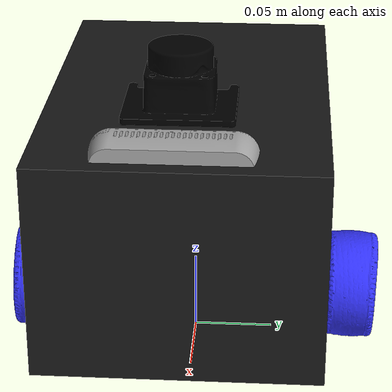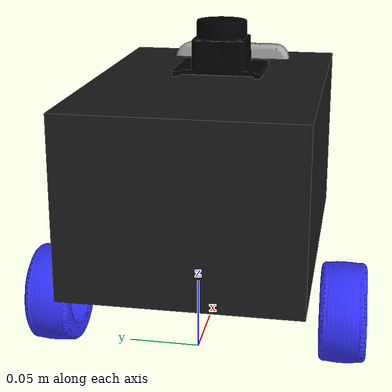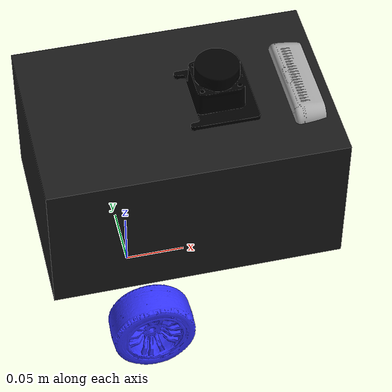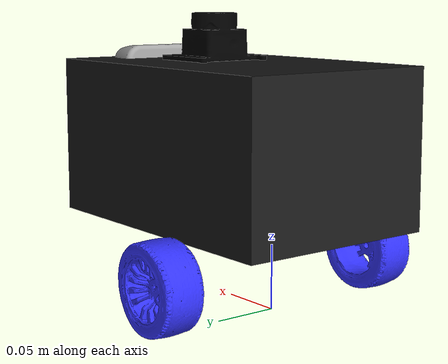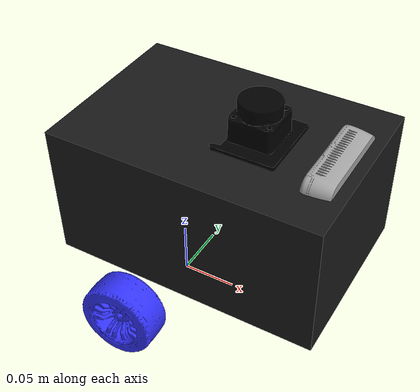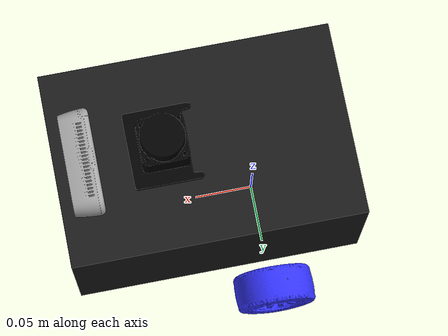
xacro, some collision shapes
<?xml version="1.0"?>

<robot xmlns:xacro="http://www.ros.org/wiki/xacro"  name="burger">
    <xacro:arg name="use_sim_camera" default="false"/>
    <xacro:arg name="sim_mode" default="false"/>
    <xacro:include filename="robot_core.xacro" />
    <xacro:include filename="lidar.xacro" />
    <xacro:include filename="depth_camera.xacro" />
    <xacro:if value="$(arg use_sim_camera)">
    </xacro:if>
</robot>

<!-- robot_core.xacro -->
<robot xmlns:xacro="http://www.ros.org/wiki/xacro">

  <xacro:include filename="inertial_macros.xacro"/>

  <!-- ================= PROPERTIES ================= -->

  <xacro:property name="chassis_length" value="0.24"/>
  <xacro:property name="chassis_width"  value="0.16"/>
  <xacro:property name="chassis_height" value="0.123"/>
  <xacro:property name="chassis_mass"   value="2.5"/>

  <xacro:property name="wheel_radius"     value="0.0346"/>
  <xacro:property name="wheel_thickness"  value="0.026"/>
  <xacro:property name="wheel_mass"       value="0.15"/>
  <xacro:property name="wheel_offset_x"   value="0.0"/>
  <xacro:property name="wheel_offset_y"   value="0.1"/>
  <xacro:property name="wheel_offset_z"   value="0.005"/>

  <xacro:property name="caster_wheel_radius" value="0.01"/>
  <xacro:property name="caster_wheel_mass"   value="0.1"/>
  <xacro:property name="caster_wheel_offset_x" value="0.075"/>
  <xacro:property name="caster_wheel_offset_z"
                  value="${wheel_offset_z - wheel_radius + caster_wheel_radius -0.024}"/>

  <!-- ================= MATERIALS ================= -->

  <material name="white">
    <color rgba="1 1 1 0.95"/>
  </material>

  <material name="orange">
    <color rgba="1 0.3 0.1 1"/>
  </material>

  <material name="blue">
    <color rgba="0.2 0.2 1 1"/>
  </material>

  <material name="black">
    <color rgba="0 0 0 0.99"/>
  </material>
 <material name="light_black">
    <color rgba="0.1 0.1 0.1 1"/>
  </material>

  <material name="red">
    <color rgba="1 0 0 0.9"/>
  </material>

  <material name="green">
    <color rgba="0 0.8 0 1"/>
  </material>

  <material name="grey">
    <color rgba="0.647 0.647 0.647 1"/>
  </material>

  <!-- ================= BASE LINK ================= -->

  <link name="base_link"/>

  <!-- ================= BASE FOOTPRINT ================= -->

  <joint name="base_footprint_joint" type="fixed">
    <parent link="base_link"/>
    <child link="base_footprint"/>
    <origin xyz="0 0 0" rpy="0 0 0"/>
  </joint>

  <link name="base_footprint"/>

  <!-- ================= CHASSIS ================= -->

  <joint name="chassis_joint" type="fixed">
    <parent link="base_link"/>
    <child link="chassis"/>
    <origin xyz="0.045 0 ${wheel_radius+0.02}"/>
  </joint>

  <link name="chassis">

    <visual>
      <origin xyz="0 0.0035 0" rpy="1.5708 0 1.5708"/>
      <geometry>
        <mesh filename="package://robot_descriptor/meshes/chassis_main.stl"
              scale="0.001 0.001 0.001"/>
      </geometry>
      <material name="light_black"/>
    </visual>

    <collision>
      <origin xyz="0 0 ${2*wheel_radius}"/>
      <geometry>
        <box size="${chassis_length} ${chassis_width} ${chassis_height}"/>
      </geometry>
    </collision>

    <xacro:inertial_box mass="2.5"
                        x="${chassis_length}"
                        y="${chassis_width}"
                        z="${chassis_height}">
        <origin xyz="${chassis_length/10} 0 ${chassis_height/2}" rpy="0 0 0"/>
    </xacro:inertial_box>

  </link>

  <gazebo reference="chassis">
    <material>Gazebo/Black</material>
  </gazebo>

  <!-- ================= IMU ================= -->

  <joint name="IMU" type="fixed">
    <parent link="chassis"/>
    <child link="imu"/>
    <origin xyz="-0.025 0 0.09" rpy="0 0 0"/>
  </joint>

    <link name="imu">

    <inertial>
        <mass value="0.01"/>
        <inertia ixx="1e-6" ixy="0" ixz="0"
                iyy="1e-6" iyz="0"
                izz="1e-6"/>
    </inertial>

    </link>

 <gazebo reference="imu">
  <sensor name="bno055" type="imu">
    <always_on>1</always_on>
    <preserveFixedJoint>true</preserveFixedJoint>
    <update_rate>100</update_rate>
    <visualize>true</visualize>
    <topic>imu</topic>
    <gz_frame_id>imu</gz_frame_id>
    <plugin filename="libignition-gazebo-imu-system.so" name="ignition::gazebo::systems::Imu">
    </plugin>
    <imu>
      <angular_velocity>
        <x><noise type="gaussian"><mean>0.0</mean><stddev>2e-4</stddev></noise></x>
        <y><noise type="gaussian"><mean>0.0</mean><stddev>2e-4</stddev></noise></y>
        <z><noise type="gaussian"><mean>0.0</mean><stddev>2e-4</stddev></noise></z>
      </angular_velocity>
      <linear_acceleration>
        <x><noise type="gaussian"><mean>0.0</mean><stddev>1.7e-2</stddev></noise></x>
        <y><noise type="gaussian"><mean>0.0</mean><stddev>1.7e-2</stddev></noise></y>
        <z><noise type="gaussian"><mean>0.0</mean><stddev>1.7e-2</stddev></noise></z>
      </linear_acceleration>
    </imu>
  </sensor>
</gazebo>
  <!-- ================= LEFT WHEEL ================= -->

  <joint name="left_wheel_joint" type="continuous">
    <parent link="base_link"/>
    <child link="left_wheel"/>
    <origin xyz="0 ${wheel_offset_y} ${wheel_radius}" rpy="-${pi/2} 0 0"/>
    <axis xyz="0 0 1"/>
  </joint>

  <link name="left_wheel">

    <visual>
      <origin xyz="0 0 -${wheel_offset_y}"
              rpy="1.5708 -1.5708 -${pi/2}"/>
      <geometry>
        <mesh filename="package://robot_descriptor/meshes/wheel.stl"
              scale="0.001 0.001 0.001"/>
      </geometry>
      <material name="blue"/>
    </visual>

    <collision>
      <geometry>
        <cylinder radius="${wheel_radius}"
                  length="${wheel_thickness}"/>
      </geometry>
    </collision>

    <xacro:inertial_cylinder mass="${wheel_mass}"
                             length="${wheel_thickness}"
                             radius="${wheel_radius}">
      <origin xyz="0 0 0" rpy="0 0 0"/>
    </xacro:inertial_cylinder>

  </link>

  <gazebo reference="left_wheel">
    <material>Gazebo/Blue</material>
  </gazebo>

  <!-- ================= RIGHT WHEEL ================= -->

  <joint name="right_wheel_joint" type="continuous">
    <parent link="base_link"/>
    <child link="right_wheel"/>
    <origin xyz="0 -${wheel_offset_y} ${wheel_radius}" rpy="${pi/2} 0 0"/>
    <axis xyz="0 0 -1"/>
  </joint>

  <link name="right_wheel">

    <visual>
      <origin xyz="0 0 -${wheel_offset_y}"
              rpy="1.5708 -1.5708 -${pi/2}"/>
      <geometry>
        <mesh filename="package://robot_descriptor/meshes/wheel.stl"
              scale="0.001 0.001 0.001"/>
      </geometry>
      <material name="blue"/>
    </visual>

    <collision>
      <geometry>
        <cylinder radius="${wheel_radius}"
                  length="${wheel_thickness}"/>
      </geometry>
    </collision>

    <xacro:inertial_cylinder mass="${wheel_mass}"
                             length="${wheel_thickness}"
                             radius="${wheel_radius}">
      <origin xyz="0 0 0" rpy="0 0 0"/>
    </xacro:inertial_cylinder>

  </link>

  <gazebo reference="right_wheel">
    <material>Gazebo/Blue</material>
  </gazebo>

  <!-- ================= CASTER ================= -->

  <joint name="caster_wheel_joint" type="fixed">
    <parent link="chassis"/>
    <child link="caster_wheel"/>
    <origin xyz="${caster_wheel_offset_x} 0 ${caster_wheel_offset_z}"/>
  </joint>

  <link name="caster_wheel">

    <collision>
      <geometry>
        <sphere radius="${caster_wheel_radius}"/>
      </geometry>
    </collision>

    <xacro:inertial_sphere mass="${caster_wheel_mass}"
                           radius="${caster_wheel_radius}">
      <origin xyz="0 0 0" rpy="0 0 0"/>
    </xacro:inertial_sphere>

  </link>

  <gazebo reference="caster_wheel">
    <material>Gazebo/White</material>
    <mu1 value="0.001"/>
    <mu2 value="0.001"/>
  </gazebo>
    <gazebo>
    <plugin filename="ignition-gazebo-pose-publisher-system" name="ignition::gazebo::systems::PosePublisher">
        <publish_link_pose>true</publish_link_pose>
        <use_pose_vector_msg>true</use_pose_vector_msg>
        <static_publisher>true</static_publisher>
        <static_update_frequency>10</static_update_frequency>
    </plugin>
    </gazebo>

  <gazebo>
    <plugin
        filename="gz-sim-diff-drive-system"
        name="gz::sim::systems::DiffDrive">

      <left_joint>left_wheel_joint</left_joint>
      <right_joint>right_wheel_joint</right_joint>

      <wheel_separation>0.20</wheel_separation>
      <wheel_radius>0.0346</wheel_radius>

      <topic>cmd_vel</topic>

      <odom_topic>odom</odom_topic>
      <tf_topic>tf</tf_topic>

      <frame_id>odom</frame_id>
      <child_frame_id>base_link</child_frame_id>

      <publish_odom>true</publish_odom>
      <publish_tf>true</publish_tf>

    </plugin>
  </gazebo>
</robot>

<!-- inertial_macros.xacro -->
<robot xmlns:xacro="http://www.ros.org/wiki/xacro" >

    <xacro:macro name="inertial_sphere" params="mass radius *origin">
        <inertial>
            <xacro:insert_block name="origin"/>
            <mass value="${mass}" />
            <inertia ixx="${(2/5) * mass * (radius*radius)}" ixy="0.0" ixz="0.0"
                    iyy="${(2/5) * mass * (radius*radius)}" iyz="0.0"
                    izz="${(2/5) * mass * (radius*radius)}" />
        </inertial>
    </xacro:macro>

    <xacro:macro name="inertial_box" params="mass x y z *origin">
        <inertial>
            <xacro:insert_block name="origin"/>
            <mass value="${mass}" />
            <inertia ixx="${(1/12) * mass * (y*y+z*z)}" ixy="0.0" ixz="0.0"
                    iyy="${(1/12) * mass * (x*x+z*z)}" iyz="0.0"
                    izz="${(1/12) * mass * (x*x+y*y)}" />
        </inertial>
    </xacro:macro>

    <xacro:macro name="inertial_cylinder" params="mass length radius *origin">
        <inertial>
            <xacro:insert_block name="origin"/>
            <mass value="${mass}" />
            <inertia ixx="${(1/12) * mass * (3*radius*radius + length*length)}" ixy="0.0" ixz="0.0"
                    iyy="${(1/12) * mass * (3*radius*radius + length*length)}" iyz="0.0"
                    izz="${(1/2) * mass * (radius*radius)}" />
        </inertial>
    </xacro:macro>

</robot>

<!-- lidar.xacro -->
<robot xmlns:xacro="http://www.ros.org/wiki/xacro" >

    <joint name="laser_joint" type="fixed">
        <parent link="base_link"/>
        <child link="laser_frame"/>
        <origin xyz="0.075 0 ${wheel_radius+0.181}" rpy="0 3.14159265359 1.57079"/>
    </joint>

    <link name="laser_frame">
        <visual>
            <origin xyz="0.0035 -0.0 0.041" rpy=" -1.57079  0   3.14159265359"/>
            <geometry>
                <mesh filename="package://robot_descriptor/meshes/lidar.stl" scale="0.001 0.001 0.001"/>
            </geometry>
            <material name="black"/>
        </visual>

        <xacro:inertial_cylinder mass="0.1" length="0.04" radius="0.05">
            <origin xyz="0 0 0" rpy="0 0 0"/>
        </xacro:inertial_cylinder>
    </link>

    <gazebo reference="laser_frame">
    <material>Gazebo/Black</material>
    <self_collide>false</self_collide>

    <sensor name="ld06" type="gpu_lidar">
        <pose>0 0 0 0 0 0</pose>
        <always_on>true</always_on>
        <update_rate>10</update_rate>
        <visualize>false</visualize>
        <topic>scan</topic>
        <gz_frame_id>laser_frame</gz_frame_id>
        <lidar>

        <scan>
            <horizontal>
            <samples>720</samples>
            <resolution>1</resolution>
            <min_angle>-3.141592</min_angle>
            <max_angle>3.141592</max_angle>
            </horizontal>
        </scan>

        <range>
            <min>0.1</min>
            <max>12.0</max>
            <resolution>0.01</resolution>
        </range>

        <noise>
            <type>gaussian</type>
            <mean>0.0</mean>
            <stddev>0.02</stddev>
        </noise>

        </lidar>

    </sensor>
    </gazebo>

</robot>

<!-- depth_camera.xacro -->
<robot xmlns:xacro="http://www.ros.org/wiki/xacro">

    <!-- DEPTH CAMERA -->

    <joint name="camera_joint" type="fixed">
        <parent link="chassis"/>
        <child link="camera_link"/>
        <origin xyz="0.11 0.0105 0.1285" rpy="0 0 0"/>
    </joint>

    <link name="camera_link">
        <visual>
            <origin xyz="0.0 -0.013 0.0" rpy="${pi/2} ${0} ${pi/2}"/>

            <geometry>
                <mesh filename="package://robot_descriptor/meshes/IntelRealsense_D435i.stl"
                      scale="0.001 0.001 0.001"/>
           </geometry>
            <material name="grey"/>
        </visual>
    </link>

</robot>
